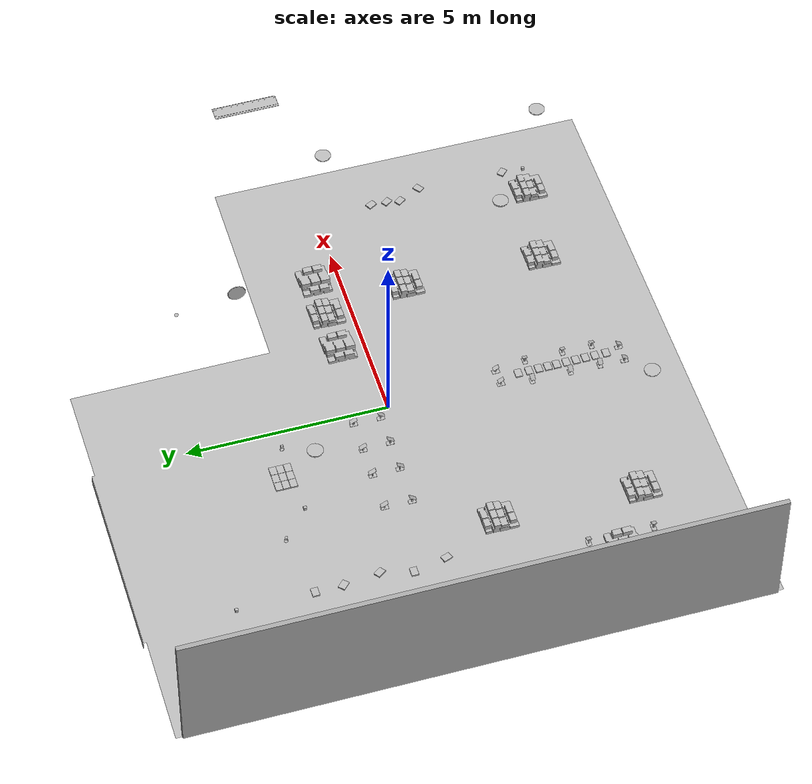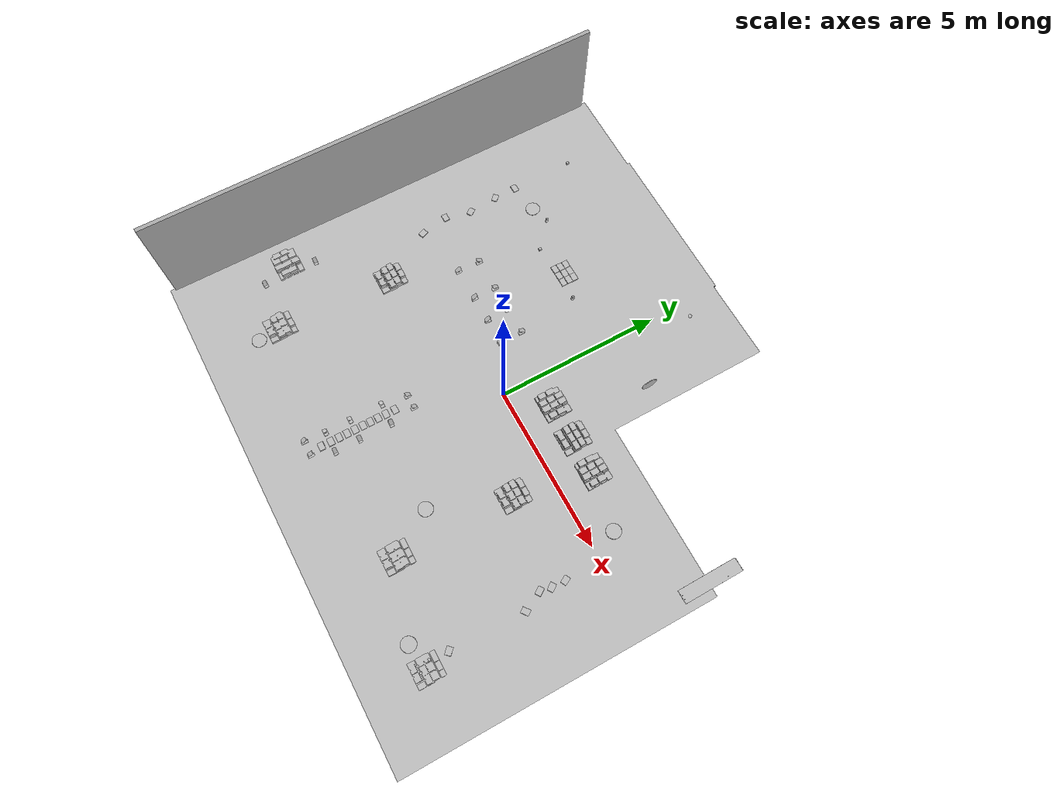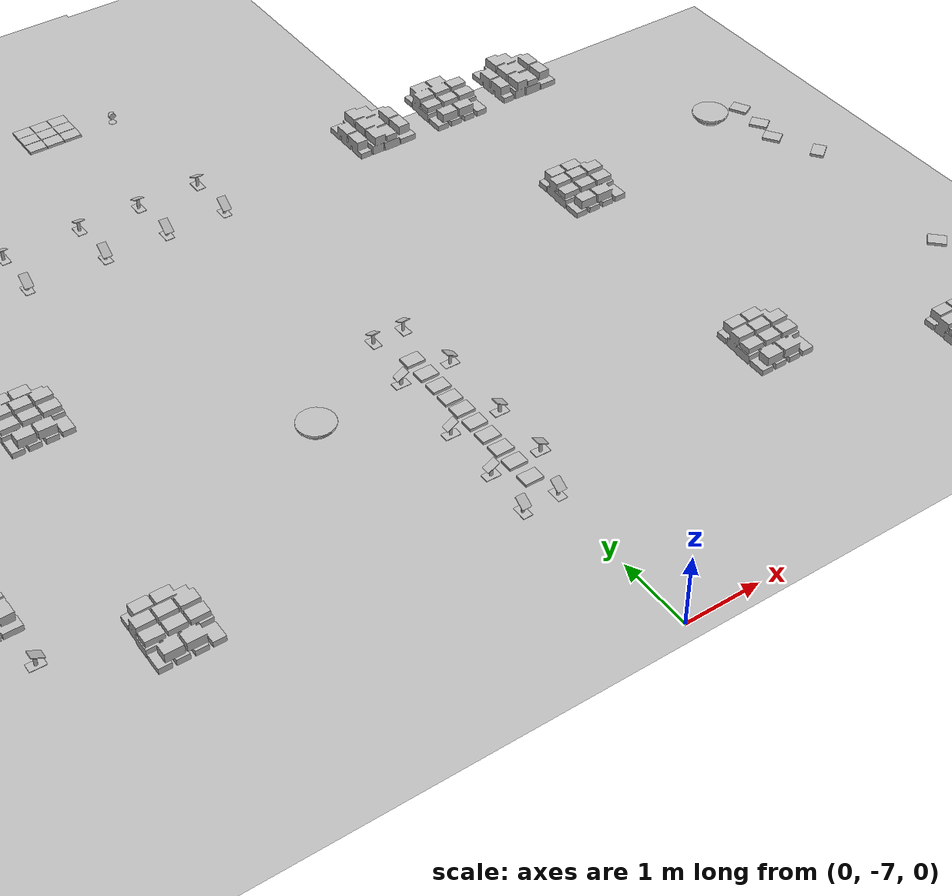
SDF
<sdf version="1.6">
 <world name="default">
  <gravity>0 0 -9.8</gravity>
  <magnetic_field>6e-06 2.3e-05 -4.2e-05</magnetic_field>
  <atmosphere type="adiabatic"/>
  <physics default="0" name="default_physics" type="ode">
   <max_step_size>0.005</max_step_size>
   <real_time_factor>1</real_time_factor>
   <real_time_update_rate>200</real_time_update_rate>
  </physics>
  <scene>
   <ambient>0.4 0.4 0.4 1</ambient>
   <background>0.7 0.7 0.7 1</background>
   <shadows>0</shadows>
   <grid>false</grid>
   <origin_visual>false</origin_visual>
  </scene>
  <spherical_coordinates>
   <surface_model>EARTH_WGS84</surface_model>
   <latitude_deg>0</latitude_deg>
   <longitude_deg>0</longitude_deg>
   <elevation>0</elevation>
   <heading_deg>0</heading_deg>
  </spherical_coordinates>
  <include>
   <name>AirConditionerC_01_001</name>
   <uri>model://aws_robomaker_retail_AirConditionerC_01</uri>
   <pose>7.458202 1.422453 3.290944 0 -0 -1.564217</pose>
  </include>
  <include>
   <name>BookE_01_001</name>
   <uri>model://aws_robomaker_retail_BookE_01</uri>
   <pose>5.476534 -1.932532 0.948933 0.000004 0.000001 -2.543521</pose>
  </include>
  <include>
   <name>BookE_01_002</name>
   <uri>model://aws_robomaker_retail_BookE_01</uri>
   <pose>-5.414000 3.330672 0.934015 -0.000001 -0.000001 -1.541094</pose>
  </include>
  <include>
   <name>BookE_01_003</name>
   <uri>model://aws_robomaker_retail_BookE_01</uri>
   <pose>5.552553 -1.214211 0.948933 0.000004 -0.000001 -2.654312</pose>
  </include>
  <include>
   <name>BookE_01_004</name>
   <uri>model://aws_robomaker_retail_BookE_01</uri>
   <pose>5.677231 -4.649203 0.946394 0.000100 0.000006 -2.355752</pose>
  </include>
  <include>
   <name>BookE_01_005</name>
   <uri>model://aws_robomaker_retail_BookE_01</uri>
   <pose>5.538150 -1.610317 0.948933 0 0 -2.526901</pose>
  </include>
  <include>
   <name>BookE_01_006</name>
   <uri>model://aws_robomaker_retail_BookE_01</uri>
   <pose>-1.889425 3.346395 1.054941 0 0 1.568157</pose>
  </include>
  <include>
   <name>BookE_01_007</name>
   <uri>model://aws_robomaker_retail_BookE_01</uri>
   <pose>-2.123726 3.346395 1.054941 0 0 1.568157</pose>
  </include>
  <include>
   <name>BookE_01_008</name>
   <uri>model://aws_robomaker_retail_BookE_01</uri>
   <pose>-5.315121 1.771952 0.955242 3.141243 -0.072268 -2.526906</pose>
  </include>
  <include>
   <name>BookE_01_010</name>
   <uri>model://aws_robomaker_retail_BookE_01</uri>
   <pose>-5.503415 1.012063 0.941463 0 0 -1.568440</pose>
  </include>
  <include>
   <name>BookE_01_011</name>
   <uri>model://aws_robomaker_retail_BookE_01</uri>
   <pose>5.749231 -2.492018 0.948933 0.000002 0.000001 2.223394</pose>
  </include>
  <include>
   <name>BookE_01_012</name>
   <uri>model://aws_robomaker_retail_BookE_01</uri>
   <pose>-5.333584 0.186186 0.949316 -0.000001 -0.004549 -2.798485</pose>
  </include>
  <include>
   <name>BookE_01_013</name>
   <uri>model://aws_robomaker_retail_BookE_01</uri>
   <pose>-5.403906 2.650881 0.931119 0.021204 -0.000001 -2.355751</pose>
  </include>
  <include>
   <name>BookE_01_014</name>
   <uri>model://aws_robomaker_retail_BookE_01</uri>
   <pose>-1.889425 2.993687 1.054941 0 0 1.568157</pose>
  </include>
  <include>
   <name>BookE_01_015</name>
   <uri>model://aws_robomaker_retail_BookE_01</uri>
   <pose>-2.123726 2.993687 1.054941 0 0 1.568157</pose>
  </include>
  <include>
   <name>BookE_01_016</name>
   <uri>model://aws_robomaker_retail_BookE_01</uri>
   <pose>-2.357369 2.993687 1.054941 0 0 1.568157</pose>
  </include>
  <include>
   <name>BookE_01_017</name>
   <uri>model://aws_robomaker_retail_BookE_01</uri>
   <pose>-1.889425 3.172920 1.054941 0 0 1.568157</pose>
  </include>
  <include>
   <name>BookE_01_018</name>
   <uri>model://aws_robomaker_retail_BookE_01</uri>
   <pose>-2.123726 3.172920 1.054941 0 0 1.568157</pose>
  </include>
  <include>
   <name>BookE_01_019</name>
   <uri>model://aws_robomaker_retail_BookE_01</uri>
   <pose>-2.357369 3.172920 1.054941 0 0 1.568157</pose>
  </include>
  <include>
   <name>BookE_01_020</name>
   <uri>model://aws_robomaker_retail_BookE_01</uri>
   <pose>-0.694312 -3.530823 1.053825 0.000004 -0.000004 -1.573382</pose>
  </include>
  <include>
   <name>BookE_01_021</name>
   <uri>model://aws_robomaker_retail_BookE_01</uri>
   <pose>-0.694312 -3.760511 1.053825 0.000004 -0.000004 -1.573382</pose>
  </include>
  <include>
   <name>BookE_01_022</name>
   <uri>model://aws_robomaker_retail_BookE_01</uri>
   <pose>-0.694312 -3.980472 1.053825 0.000004 -0.000004 -1.573382</pose>
  </include>
  <include>
   <name>BookE_01_023</name>
   <uri>model://aws_robomaker_retail_BookE_01</uri>
   <pose>-0.694312 -4.221891 1.053825 0.000004 -0.000004 -1.573382</pose>
  </include>
  <include>
   <name>BookE_01_024</name>
   <uri>model://aws_robomaker_retail_BookE_01</uri>
   <pose>-0.694312 -4.461891 1.053825 0.000004 -0.000004 -1.573382</pose>
  </include>
  <include>
   <name>BookE_01_025</name>
   <uri>model://aws_robomaker_retail_BookE_01</uri>
   <pose>-0.694312 -4.701891 1.053825 0.000004 -0.000004 -1.573382</pose>
  </include>
  <include>
   <name>BookE_01_026</name>
   <uri>model://aws_robomaker_retail_BookE_01</uri>
   <pose>-0.694312 -4.941891 1.053825 0.000004 -0.000004 -1.573382</pose>
  </include>
  <include>
   <name>BookE_01_027</name>
   <uri>model://aws_robomaker_retail_BookE_01</uri>
   <pose>-0.694312 -5.221891 1.053825 0.000004 -0.000004 -1.573382</pose>
  </include>
  <include>
   <name>BookE_01_028</name>
   <uri>model://aws_robomaker_retail_BookE_01</uri>
   <pose>-0.694312 -3.291891 1.053825 0.000004 -0.000004 -1.573382</pose>
  </include>
  <include>
   <name>BookE_01_029</name>
   <uri>model://aws_robomaker_retail_BookE_01</uri>
   <pose>-0.694312 -3.021891 1.053825 0.000004 -0.000004 -1.573382</pose>
  </include>
  <include>
   <name>BookE_01_030</name>
   <uri>model://aws_robomaker_retail_BookE_01</uri>
   <pose>-2.357369 3.346395 1.054941 0 0 1.568157</pose>
  </include>
  <include>
   <name>BookF_01_001</name>
   <uri>model://aws_robomaker_retail_BookF_01</uri>
   <pose>2.931779 -1.303250 0.770041 0.003448 -0.000011 0.003114</pose>
  </include>
  <include>
   <name>BookD_01_001</name>
   <uri>model://aws_robomaker_retail_BookD_01</uri>
   <pose>5.720048 -5.365876 0.022179 0.003452 -0.000001 0.000652</pose>
  </include>
  <include>
   <name>BookF_01_002</name>
   <uri>model://aws_robomaker_retail_BookF_01</uri>
   <pose>2.902979 -4.760748 0.75826 0.003450 0.000006 -0.002250</pose>
  </include>
  <include>
   <name>BookD_01_002</name>
   <uri>model://aws_robomaker_retail_BookD_01</uri>
   <pose>-4.509612 -1.312536 0.804482 0 0 -0.000004</pose>
  </include>
  <include>
   <name>BookF_01_003</name>
   <uri>model://aws_robomaker_retail_BookF_01</uri>
   <pose>-4.604931 -4.772141 0.804483 0.000004 0 0</pose>
  </include>
  <include>
   <name>BookD_01_003</name>
   <uri>model://aws_robomaker_retail_BookD_01</uri>
   <pose>-6.235609 -3.785181 1.038157 0.000008 0 1.580378</pose>
  </include>
  <include>
   <name>BookF_01_004</name>
   <uri>model://aws_robomaker_retail_BookF_01</uri>
   <pose>1.261644 0.856469 1.038157 0.000008 0 1.580378</pose>
  </include>
  <include>
   <name>BookD_01_004</name>
   <uri>model://aws_robomaker_retail_BookD_01</uri>
   <pose>2.358626 0.854853 1.038153 0.000006 0 0.001712</pose>
  </include>
  <include>
   <name>BookF_01_005</name>
   <uri>model://aws_robomaker_retail_BookF_01</uri>
   <pose>3.430611 0.856469 1.038157 0.000008 0 1.580378</pose>
  </include>
  <include>
   <name>SecurityCamera_01_001</name>
   <uri>model://aws_robomaker_retail_SecurityCamera_01</uri>
   <pose>-1.308807 2.973710 1.037756 -0.004006 -0.000097 -0.010660</pose>
  </include>
  <include>
   <name>SecurityCamera_01_002</name>
   <uri>model://aws_robomaker_retail_SecurityCamera_01</uri>
   <pose>-3.904507 3.590531 1.037756 0 0 3.050913</pose>
  </include>
  <model name="InfoDesk_01_001_unreachable_interior_blocker">
   <static>true</static>
   <pose>1.790421 5.012964 0.545000 0 0 -0.025146</pose>
   <link name="link">
    <collision name="collision"><geometry><box><size>0.62 1.70 1.05</size></box></geometry></collision>
   </link>
  </model>
  <include>
   <name>RetailShopFloor_01_001</name>
   <uri>model://aws_robomaker_retail_RetailShopFloor_01</uri>
   <pose>-0.002687 0 -0.276618 -0 0 0</pose>
  </include>
  <include>
   <name>TabletB_01_001</name>
   <uri>model://aws_robomaker_retail_TabletB_01</uri>
   <pose>-0.887658 -2.526304 1.181088 0.534314 -0.007303 -3.125039</pose>
  </include>
  <include>
   <name>TabletB_01_002</name>
   <uri>model://aws_robomaker_retail_TabletB_01</uri>
   <pose>-0.490858 -2.526304 1.181088 0.534314 -0.007303 -3.125039</pose>
  </include>
  <include>
   <name>TabletB_01_003</name>
   <uri>model://aws_robomaker_retail_TabletB_01</uri>
   <pose>-0.598457 -5.570730 1.184718 0.550862 -0.007302 0.000000</pose>
  </include>
  <include>
   <name>TabletB_01_004</name>
   <uri>model://aws_robomaker_retail_TabletB_01</uri>
   <pose>-1.036580 -5.570730 1.184718 0.550862 -0.007302 0.000000</pose>
  </include>
  <include>
   <name>TabletB_01_005</name>
   <uri>model://aws_robomaker_retail_TabletB_01</uri>
   <pose>-0.378561 -4.954985 1.184718 0.518383 0.023342 1.564514</pose>
  </include>
  <include>
   <name>TabletB_01_006</name>
   <uri>model://aws_robomaker_retail_TabletB_01</uri>
   <pose>-0.378561 -4.227170 1.184718 0.518383 0.023342 1.564514</pose>
  </include>
  <include>
   <name>TabletB_01_007</name>
   <uri>model://aws_robomaker_retail_TabletB_01</uri>
   <pose>-0.378561 -3.280550 1.184718 0.518383 0.023342 1.564514</pose>
  </include>
  <include>
   <name>TabletB_01_008</name>
   <uri>model://aws_robomaker_retail_TabletB_01</uri>
   <pose>-1.003855 -4.964849 1.184718 0.512461 -0.058405 -1.604103</pose>
  </include>
  <include>
   <name>TabletB_01_009</name>
   <uri>model://aws_robomaker_retail_TabletB_01</uri>
   <pose>-1.003855 -4.224020 1.184718 0.512461 -0.058405 -1.604103</pose>
  </include>
  <include>
   <name>TabletB_01_010</name>
   <uri>model://aws_robomaker_retail_TabletB_01</uri>
   <pose>-1.003855 -3.275521 1.184718 0.512461 -0.058405 -1.604103</pose>
  </include>
  <include>
   <name>TabletB_01_011</name>
   <uri>model://aws_robomaker_retail_TabletB_01</uri>
   <pose>-5.915050 -3.031740 1.184718 0.518384 0.023341 1.564511</pose>
  </include>
  <include>
   <name>TabletB_01_012</name>
   <uri>model://aws_robomaker_retail_TabletB_01</uri>
   <pose>-5.915050 -4.612402 1.184718 0.518384 0.023341 1.564511</pose>
  </include>
  <include>
   <name>Tablet_01_001</name>
   <uri>model://aws_robomaker_retail_Tablet_01</uri>
   <pose>-1.846095 0.489109 1.180551 0.579329 0.041534 -0.007936</pose>
  </include>
  <include>
   <name>Tablet_01_002</name>
   <uri>model://aws_robomaker_retail_Tablet_01</uri>
   <pose>-2.650150 0.489109 1.180551 0.579329 0.041534 -0.007936</pose>
  </include>
  <include>
   <name>Tablet_01_003</name>
   <uri>model://aws_robomaker_retail_Tablet_01</uri>
   <pose>-1.069270 0.489109 1.180551 0.579329 0.041534 -0.007936</pose>
  </include>
  <include>
   <name>Tablet_01_004</name>
   <uri>model://aws_robomaker_retail_Tablet_01</uri>
   <pose>-3.639330 0.489109 1.180551 0.579329 0.041534 -0.007936</pose>
  </include>
  <include>
   <name>Tablet_01_005</name>
   <uri>model://aws_robomaker_retail_Tablet_01</uri>
   <pose>-1.072680 1.163816 1.177895 0.513308 -0.000001 3.110062</pose>
  </include>
  <include>
   <name>Tablet_01_006</name>
   <uri>model://aws_robomaker_retail_Tablet_01</uri>
   <pose>-1.876690 1.163816 1.177895 0.513308 -0.000001 3.110062</pose>
  </include>
  <include>
   <name>Tablet_01_007</name>
   <uri>model://aws_robomaker_retail_Tablet_01</uri>
   <pose>-2.649670 1.163816 1.177895 0.513308 -0.000001 3.110062</pose>
  </include>
  <include>
   <name>Tablet_01_008</name>
   <uri>model://aws_robomaker_retail_Tablet_01</uri>
   <pose>-3.636550 1.163816 1.177895 0.513308 -0.000001 3.110062</pose>
  </include>
  <include>
   <name>Holder_01_001</name>
   <uri>model://aws_robomaker_retail_Holder_01</uri>
   <pose>-0.599181 -5.571190 1.037756 0 -0 0</pose>
  </include>
  <include>
   <name>Holder_01_002</name>
   <uri>model://aws_robomaker_retail_Holder_01</uri>
   <pose>-0.491632 -2.528687 1.037756 0 -0 -3.130149</pose>
  </include>
  <include>
   <name>Holder_01_003</name>
   <uri>model://aws_robomaker_retail_Holder_01</uri>
   <pose>-1.035840 -5.571191 1.037756 0 -0 0</pose>
  </include>
  <include>
   <name>Holder_01_004</name>
   <uri>model://aws_robomaker_retail_Holder_01</uri>
   <pose>-0.886180 -2.529685 1.037756 0 -0 -3.130149</pose>
  </include>
  <include>
   <name>Holder_01_005</name>
   <uri>model://aws_robomaker_retail_Holder_01</uri>
   <pose>-1.846620 0.495602 1.037756 0 -0 0</pose>
  </include>
  <include>
   <name>Holder_01_006</name>
   <uri>model://aws_robomaker_retail_Holder_01</uri>
   <pose>-2.647810 0.495602 1.037756 0 -0 0</pose>
  </include>
  <include>
   <name>Holder_01_007</name>
   <uri>model://aws_robomaker_retail_Holder_01</uri>
   <pose>-1.072420 0.495602 1.037756 0 -0 0</pose>
  </include>
  <include>
   <name>Holder_01_008</name>
   <uri>model://aws_robomaker_retail_Holder_01</uri>
   <pose>-3.639583 0.495602 1.037756 0 -0 0</pose>
  </include>
  <include>
   <name>Holder_01_009</name>
   <uri>model://aws_robomaker_retail_Holder_01</uri>
   <pose>-1.072932 1.160829 1.037756 0 -0 -3.130149</pose>
  </include>
  <include>
   <name>Holder_01_010</name>
   <uri>model://aws_robomaker_retail_Holder_01</uri>
   <pose>-1.874890 1.160829 1.037756 0 -0 -3.130149</pose>
  </include>
  <include>
   <name>Holder_01_011</name>
   <uri>model://aws_robomaker_retail_Holder_01</uri>
   <pose>-2.659160 1.160829 1.037756 0 -0 -3.130149</pose>
  </include>
  <include>
   <name>Holder_01_012</name>
   <uri>model://aws_robomaker_retail_Holder_01</uri>
   <pose>-3.631300 1.160829 1.037756 0 -0 -3.130149</pose>
  </include>
  <include>
   <name>Holder_01_013</name>
   <uri>model://aws_robomaker_retail_Holder_01</uri>
   <pose>-0.372529 -4.960362 1.037756 0 -0 1.550000</pose>
  </include>
  <include>
   <name>Holder_01_014</name>
   <uri>model://aws_robomaker_retail_Holder_01</uri>
   <pose>-0.372529 -4.226824 1.037756 0 -0 1.550000</pose>
  </include>
  <include>
   <name>Holder_01_015</name>
   <uri>model://aws_robomaker_retail_Holder_01</uri>
   <pose>-0.372529 -3.286318 1.037756 0 -0 1.550000</pose>
  </include>
  <include>
   <name>Holder_01_016</name>
   <uri>model://aws_robomaker_retail_Holder_01</uri>
   <pose>-1.001700 -4.961520 1.037756 0 0 -1.588645</pose>
  </include>
  <include>
   <name>Holder_01_017</name>
   <uri>model://aws_robomaker_retail_Holder_01</uri>
   <pose>-1.001700 -4.226100 1.037756 0 0 -1.588645</pose>
  </include>
  <include>
   <name>Holder_01_018</name>
   <uri>model://aws_robomaker_retail_Holder_01</uri>
   <pose>-1.001700 -3.269130 1.037756 0 0 -1.588645</pose>
  </include>
  <include>
   <name>Holder_01_019</name>
   <uri>model://aws_robomaker_retail_Holder_01</uri>
   <pose>-5.929110 -3.032790 1.037756 0 -0 1.550000</pose>
  </include>
  <include>
   <name>Holder_01_020</name>
   <uri>model://aws_robomaker_retail_Holder_01</uri>
   <pose>-5.929110 -4.603640 1.037756 0 -0 1.550000</pose>
  </include>
  <include>
   <name>Horologe_01_001</name>
   <uri>model://aws_robomaker_retail_Horologe_01</uri>
   <pose>2.405124 3.025708 2.525191 0 -0 -1.565582</pose>
  </include>
  <include>
   <name>LightA_01_001</name>
   <uri>model://aws_robomaker_retail_LightA_01</uri>
   <pose>2.774418 -3.628150 3.150329 0 -0 0</pose>
  </include>
  <include>
   <name>LightA_01_002</name>
   <uri>model://aws_robomaker_retail_LightA_01</uri>
   <pose>5.383991 -5.383710 3.150328 0 -0 0</pose>
  </include>
  <include>
   <name>LightA_01_003</name>
   <uri>model://aws_robomaker_retail_LightA_01</uri>
   <pose>5.383991 0.041920 3.150328 0 -0 0</pose>
  </include>
  <include>
   <name>LightA_01_004</name>
   <uri>model://aws_robomaker_retail_LightA_01</uri>
   <pose>-3.210668 -5.383710 3.150328 0 -0 0</pose>
  </include>
  <include>
   <name>LightA_01_005</name>
   <uri>model://aws_robomaker_retail_LightA_01</uri>
   <pose>-3.271001 2.685925 3.150328 0 -0 0</pose>
  </include>
  <include>
   <name>MagicCube_01_001</name>
   <uri>model://aws_robomaker_retail_MagicCube_01</uri>
   <pose>5.667560 -5.174908 0.968597 1.559939 -0.000001 -1.555409</pose>
  </include>
  <include>
   <name>MagicCube_01_002</name>
   <uri>model://aws_robomaker_retail_MagicCube_01</uri>
   <pose>-5.383672 5.177522 0.968608 1.564128 -0.000001 -1.555410</pose>
  </include>
  <include>
   <name>MagicCube_01_003</name>
   <uri>model://aws_robomaker_retail_MagicCube_01</uri>
   <pose>-3.146512 2.928458 1.035654 0 0 0</pose>
  </include>
  <include>
   <name>Spotlight_01_001</name>
   <uri>model://aws_robomaker_retail_Spotlight_01</uri>
   <pose>1.493200 4.692372 3.302658 0 -0 0</pose>
  </include>
  <model name="ShopWindow_01_001_replaced_by_wall">
   <static>true</static>
   <pose>-7.738156 0.015960 1.70 0 0 0</pose>
   <link name="link">
    <collision name="collision"><geometry><box><size>0.12 14.132 3.40</size></box></geometry></collision>
    <visual name="visual">
     <geometry><box><size>0.12 14.132 3.40</size></box></geometry>
     <material><ambient>0.55 0.55 0.55 1</ambient><diffuse>0.65 0.65 0.65 1</diffuse></material>
    </visual>
   </link>
  </model>
  <light name="RetailShop_CeilingLight_001" type="point">
   <pose>2.774418 -3.628150 3.178466 0 -0 0</pose>
   <diffuse>0.5 0.5 0.5 1</diffuse>
   <specular>0.1 0.1 0.1 1</specular>
   <attenuation>
    <range>20</range>
    <constant>0.32</constant>
    <linear>0.01</linear>
    <quadratic>0.03</quadratic>
   </attenuation>
   <cast_shadows>0</cast_shadows>
   <direction>0 0 -1</direction>
  </light>
  <light name="RetailShop_CeilingLight_002" type="point">
   <pose>5.383991 -5.383710 3.178466 0 -0 0</pose>
   <diffuse>0.5 0.5 0.5 1</diffuse>
   <specular>0.1 0.1 0.1 1</specular>
   <attenuation>
    <range>20</range>
    <constant>0.32</constant>
    <linear>0.01</linear>
    <quadratic>0.03</quadratic>
   </attenuation>
   <cast_shadows>0</cast_shadows>
   <direction>0 0 -1</direction>
  </light>
  <light name="RetailShop_CeilingLight_003" type="point">
   <pose>5.383991 0.041920 3.178466 0 -0 0</pose>
   <diffuse>0.5 0.5 0.5 1</diffuse>
   <specular>0.1 0.1 0.1 1</specular>
   <attenuation>
    <range>20</range>
    <constant>0.32</constant>
    <linear>0.01</linear>
    <quadratic>0.03</quadratic>
   </attenuation>
   <cast_shadows>0</cast_shadows>
   <direction>0 0 -1</direction>
  </light>
  <light name="RetailShop_CeilingLight_004" type="point">
   <pose>-3.210668 -5.383710 3.178466 0 -0 0</pose>
   <diffuse>0.5 0.5 0.5 1</diffuse>
   <specular>0.1 0.1 0.1 1</specular>
   <attenuation>
    <range>20</range>
    <constant>0.32</constant>
    <linear>0.01</linear>
    <quadratic>0.03</quadratic>
   </attenuation>
   <cast_shadows>0</cast_shadows>
   <direction>0 0 -1</direction>
  </light>
  <light name="RetailShop_CeilingLight_005" type="point">
   <pose>-3.271001 2.685925 3.178466 0 -0 0</pose>
   <diffuse>0.5 0.5 0.5 1</diffuse>
   <specular>0.1 0.1 0.1 1</specular>
   <attenuation>
    <range>20</range>
    <constant>0.32</constant>
    <linear>0.01</linear>
    <quadratic>0.03</quadratic>
   </attenuation>
   <cast_shadows>0</cast_shadows>
   <direction>0 0 -1</direction>
  </light>
  <light name="RetailShop_CeilingLight_006" type="point">
   <pose>1.493200 4.692372 3.178466 0 -0 0</pose>
   <diffuse>0.5 0.5 0.5 1</diffuse>
   <specular>0.1 0.1 0.1 1</specular>
   <attenuation>
    <range>20</range>
    <constant>0.32</constant>
    <linear>0.01</linear>
    <quadratic>0.03</quadratic>
   </attenuation>
   <cast_shadows>0</cast_shadows>
   <direction>0 0 -1</direction>
  </light>
 </world>
</sdf>

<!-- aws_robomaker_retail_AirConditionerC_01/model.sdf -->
<sdf version="1.6">
  <model name="aws_robomaker_retail_AirConditionerC_01">
    <link name="link">
      <inertial>
        <mass>50</mass>
      </inertial>
      <visual name="visual">
	    <geometry>
          <mesh>
            <uri>model://aws_robomaker_retail_AirConditionerC_01/meshes/aws_AirConditionerC_01_visual.DAE</uri>
          </mesh>
        </geometry>
        <meta>
          <layer>3</layer>
        </meta>
      </visual>
    </link>
    <static>1</static>
  </model>
</sdf>

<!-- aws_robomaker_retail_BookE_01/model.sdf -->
<sdf version="1.6">
  <model name="aws_robomaker_retail_BookE_01">
    <link name="link">
      <inertial>
        <mass>1</mass>
        <inertia>
          <ixy>0</ixy>
          <ixz>0</ixz>
          <iyz>0</iyz>
          <ixx>0.0666</ixx>
          <iyy>0.0346</iyy>
          <izz>0.0986</izz>
        </inertia>
      </inertial>
      <visual name="visual">
	    <geometry>
          <mesh>
            <uri>model://aws_robomaker_retail_BookE_01/meshes/aws_BookE_01_visual.DAE</uri>
          </mesh>
        </geometry>
        <meta>
          <layer>1</layer>
        </meta>
      </visual>
    </link>

    <static>1</static>
  </model>
</sdf>

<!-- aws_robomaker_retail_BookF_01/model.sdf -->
<sdf version="1.6">
  <model name="aws_robomaker_retail_BookF_01">
    <link name="link">
      <inertial>
        <mass>10</mass>
        <inertia>
          <ixx>0.583817125</ixx>
          <ixy>0</ixy>
          <ixz>0</ixz>
          <iyy>0.50292533</iyy>
          <iyz>0</iyz>
          <izz>0.993040</izz>
        </inertia>
      </inertial>
      <visual name="visual">
	    <geometry>
          <mesh>
            <uri>model://aws_robomaker_retail_BookF_01/meshes/aws_BookF_01_visual.DAE</uri>
          </mesh>
        </geometry>
        <meta>
          <layer>1</layer>
        </meta>
      </visual>
    </link>
	<static>1</static>
  </model>
</sdf>

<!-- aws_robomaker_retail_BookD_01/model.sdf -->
<sdf version="1.6">
  <model name="aws_robomaker_retail_BookD_01">
    <link name="link">
      <inertial>
        <mass>0.5</mass>
      </inertial>
      <visual name="visual">
	    <geometry>
          <mesh>
            <uri>model://aws_robomaker_retail_BookD_01/meshes/aws_BookD_01_visual.DAE</uri>
          </mesh>
        </geometry>
        <meta>
          <layer>1</layer>
        </meta>
      </visual>
    </link>
	<static>1</static>
  </model>
</sdf>

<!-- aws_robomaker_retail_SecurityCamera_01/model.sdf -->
<sdf version="1.6">
  <model name="aws_robomaker_retail_SecurityCamera_01">
    <link name="link">
      <inertial>
        <mass>1</mass>
        <inertia>
          <ixx>18.2222</ixx>
          <ixy>0</ixy>
          <ixz>0</ixz>
          <iyy>18.2222</iyy>
          <iyz>0</iyz>
          <izz>0.0018767</izz>
        </inertia>
      </inertial>
      <visual name="visual">
	    <geometry>
          <mesh>
            <uri>model://aws_robomaker_retail_SecurityCamera_01/meshes/aws_SecurityCamera_01_visual.DAE</uri>
          </mesh>
        </geometry>
        <meta>
          <layer>2</layer>
        </meta>
      </visual>
    </link>
    <static>1</static>
  </model>
</sdf>

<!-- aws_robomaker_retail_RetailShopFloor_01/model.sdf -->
<sdf version="1.6">
  <model name="aws_robomaker_retail_RetailShopFloor_01">
    <link name="link">
      <inertial>
        <mass>100</mass>
      </inertial>
      <collision name="collision">
        <pose>-0.257416 -0.013600 0.145000 0 0 0</pose><geometry><box><size>15.52 14.55 0.29</size></box></geometry><surface><friction><ode><mu>100</mu><mu2>50</mu2></ode></friction></surface></collision>
      <visual name="visual">
	    <geometry>
          <mesh>
            <uri>model://aws_robomaker_retail_RetailShopFloor_01/meshes/aws_RetailShopFloor_01_visual.DAE</uri>
          </mesh>
        </geometry>
        <meta>
          <layer>1</layer>
        </meta>
      </visual>
	</link>
	<static>1</static>
  </model>
</sdf>

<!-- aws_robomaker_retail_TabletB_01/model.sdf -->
<sdf version="1.6">
  <model name="aws_robomaker_retail_TabletB_01">
    <link name="link">
      <inertial>
        <mass>0.161</mass>
        <inertia>
          <ixx>0.346954</ixx>
          <ixy>0</ixy>
          <ixz>0</ixz>
          <iyy>0.1772885</iyy>
          <iyz>0</iyz>
          <izz>0.5218261</izz>
        </inertia>
      </inertial>
      <visual name="visual">
	    <geometry>
          <mesh>
            <uri>model://aws_robomaker_retail_TabletB_01/meshes/aws_TabletB_01_visual.DAE</uri>
          </mesh>
        </geometry>
        <meta>
          <layer>1</layer>
        </meta>
      </visual>
    </link>
    <static>1</static>
  </model>
</sdf>

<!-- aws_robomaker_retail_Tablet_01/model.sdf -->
<sdf version="1.6">
  <model name="aws_robomaker_retail_Tablet_01">
    <link name="link">
      <inertial>
        <mass>0.5</mass>
        <inertia>
          <ixx>0.035652</ixx>
          <ixy>0</ixy>
          <ixz>0</ixz>
          <iyy>0.01</iyy>
          <iyz>0</iyz>
          <izz>0.04120698</izz>
        </inertia>
      </inertial>
      <visual name="visual">
	    <geometry>
          <mesh>
            <uri>model://aws_robomaker_retail_Tablet_01/meshes/aws_Tablet_01_visual.DAE</uri>
          </mesh>
        </geometry>
        <meta>
          <layer>2</layer>
        </meta>
      </visual>
    </link>
	<static>1</static>
  </model>
</sdf>

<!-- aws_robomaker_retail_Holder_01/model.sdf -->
<sdf version="1.6">
  <model name="aws_robomaker_retail_Holder_01">
    <link name="link">
      <inertial>
        <mass>1</mass>
      </inertial>
      <visual name="visual">
	    <geometry>
          <mesh>
            <uri>model://aws_robomaker_retail_Holder_01/meshes/aws_Holder_01_visual.DAE</uri>
          </mesh>
        </geometry>
        <meta>
          <layer>2</layer>
        </meta>
      </visual>
    </link>
	<static>1</static>
  </model>
</sdf>

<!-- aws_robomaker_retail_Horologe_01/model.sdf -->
<sdf version="1.6">
  <model name="aws_robomaker_retail_Horologe_01">
    <link name="link">
      <inertial>
        <mass>1</mass>
      </inertial>
      <visual name="visual">
	    <geometry>
          <mesh>
            <uri>model://aws_robomaker_retail_Horologe_01/meshes/aws_Horologe_01_visual.DAE</uri>
          </mesh>
        </geometry>
        <meta>
          <layer>2</layer>
        </meta>
      </visual>
    </link>
	<static>1</static>
  </model>
</sdf>

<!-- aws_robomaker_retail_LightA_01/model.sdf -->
<sdf version="1.6">
  <model name="aws_robomaker_retail_LightA_01">
    <link name="link">
      <inertial>
        <mass>1</mass>
      </inertial>
      <visual name="visual">
	    <geometry>
          <mesh>
            <uri>model://aws_robomaker_retail_LightA_01/meshes/aws_LightA_01_visual.DAE</uri>
          </mesh>
        </geometry>
        <meta>
          <layer>3</layer>
        </meta>
      </visual>
    </link>
	<static>1</static>
  </model>
</sdf>

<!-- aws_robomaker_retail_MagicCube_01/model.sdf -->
<sdf version="1.6">
  <model name="aws_robomaker_retail_MagicCube_01">
    <link name="link">
      <inertial>
        <mass>0.2</mass>
        <inertia>
          <ixx>0.01</ixx>
          <ixy>0</ixy>
          <ixz>0</ixz>
          <iyy>0.01</iyy>
          <iyz>0</iyz>
          <izz>0.01</izz>
        </inertia>
      </inertial>
      <visual name="visual">
	    <geometry>
          <mesh>
            <uri>model://aws_robomaker_retail_MagicCube_01/meshes/aws_MagicCube_01_visual.DAE</uri>
          </mesh>
        </geometry>
        <meta>
          <layer>1</layer>
        </meta>
      </visual>
    </link>
    <static>1</static>
  </model>
</sdf>

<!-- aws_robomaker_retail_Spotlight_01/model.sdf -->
<sdf version="1.6">
  <model name="aws_robomaker_retail_Spotlight_01">
    <link name="link">
      <inertial>
        <mass>1</mass>
      </inertial>
      <visual name="visual">
	    <geometry>
          <mesh>
            <uri>model://aws_robomaker_retail_Spotlight_01/meshes/aws_Spotlight_01_visual.DAE</uri>
          </mesh>
        </geometry>
        <meta>
          <layer>3</layer>
        </meta>
      </visual>
    </link>
	<static>1</static>
  </model>
</sdf>
